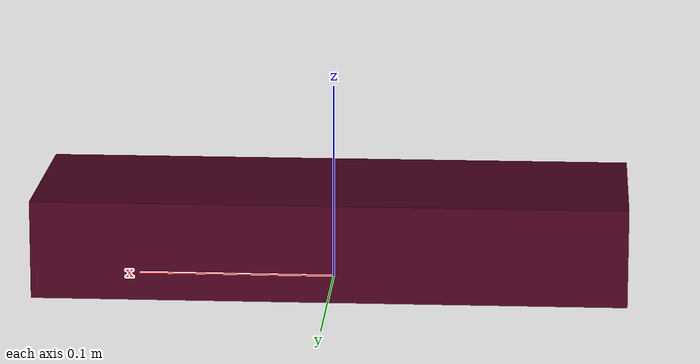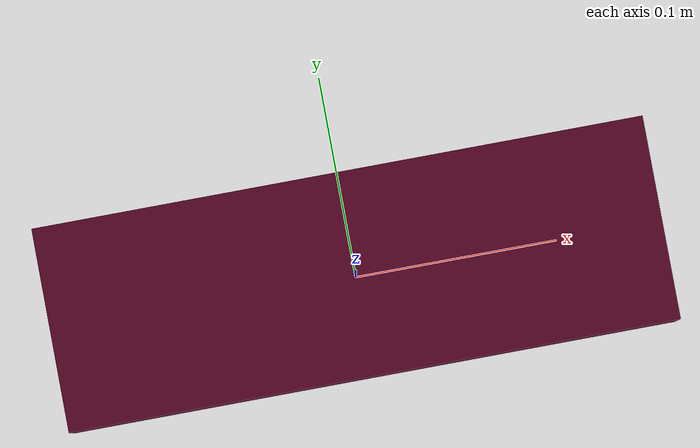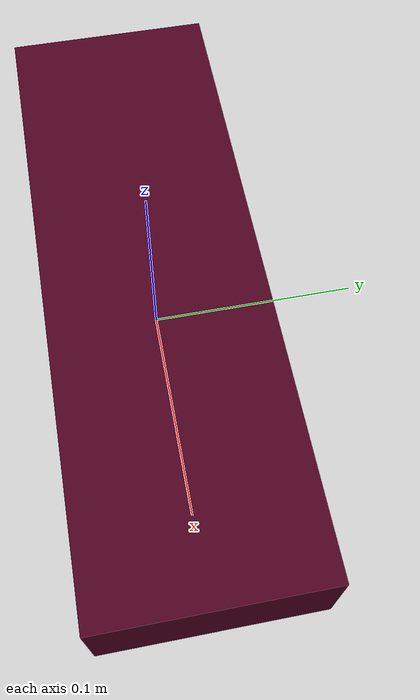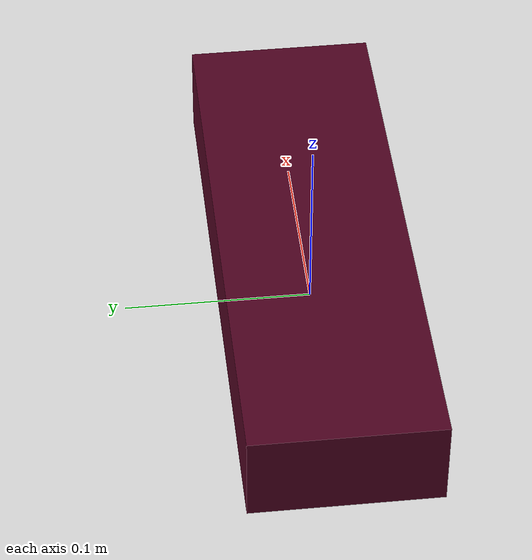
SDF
<?xml version="1.0"?>
<sdf version="1.7">
  <model name="book">
    <link name="book">
      <inertial>
        <pose>0 0 0.025 0 0 0 </pose>
        <mass>0.2</mass>
        <inertia>
          <ixx>0.00020833</ixx>
          <ixy>0</ixy>
          <ixz>0</ixz>
          <iyy>0.00154167</iyy>
          <iyz>0</iyz>
          <izz>0.00166667</izz>
        </inertia>
      </inertial>
      <visual name="book">
        <pose>0 0 0.025 0 0 0</pose>
        <geometry>
          <box>
            <size>0.3 0.1 0.05</size>
          </box>
        </geometry>
        <material>
          <diffuse>0.31 0.01 0.13 1.0</diffuse>
        </material>
      </visual>
      <collision name="top">
        <pose>0 0 0.0375 0 0 0</pose>
        <geometry>
          <box>
            <size>0.3 0.1 0.025</size>
          </box>
        </geometry>
        <drake:proximity_properties>
          <drake:compliant_hydroelastic/>
          <!-- make the top sticky -->
          <drake:mu_dynamic>2.0</drake:mu_dynamic>
          <drake:hydroelastic_modulus>1.0e6</drake:hydroelastic_modulus>
        </drake:proximity_properties>
      </collision>
      <collision name="bottom">
        <pose>0 0 0.0125 0 0 0</pose>
        <geometry>
          <box>
            <size>0.3 0.1 0.025</size>
          </box>
        </geometry>
        <drake:proximity_properties>
          <drake:compliant_hydroelastic/>
          <!-- make the bottom slippery -->
          <drake:mu_dynamic>0.1</drake:mu_dynamic>
          <drake:hydroelastic_modulus>1.0e6</drake:hydroelastic_modulus>
        </drake:proximity_properties>
      </collision>
    </link>
  </model>
</sdf>
